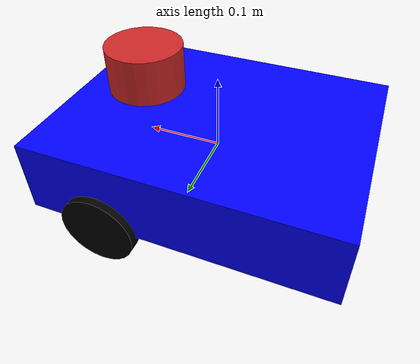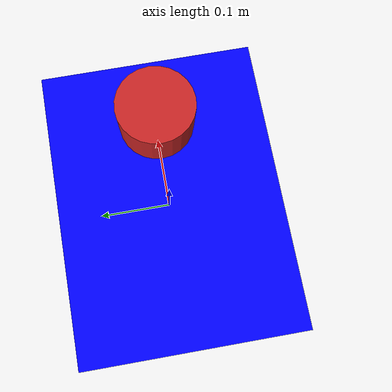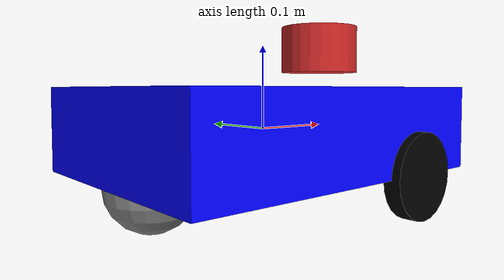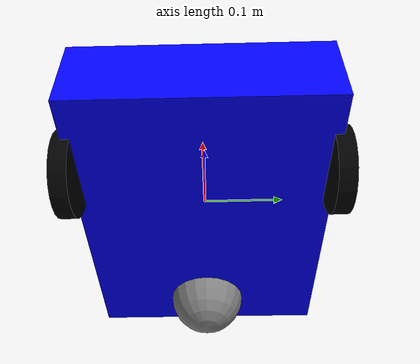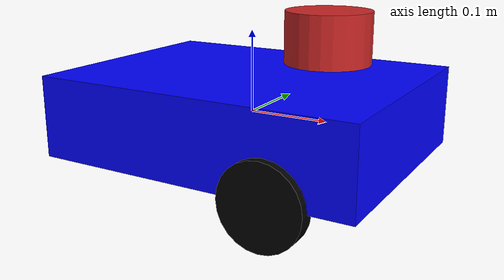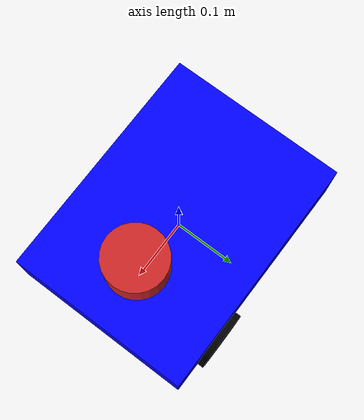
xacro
<?xml version="1.0"?>
<robot xmlns:xacro="http://www.ros.org/wiki/xacro" name="diff_drive_robot">
    <!-- Material Definitions -->
    <material name="blue">
        <color rgba="0 0 1 1"/>
    </material>
    <material name="black">
        <color rgba="0 0 0 1"/>
    </material>
    <material name="gray">
        <color rgba="0.5 0.5 0.5 1"/>
    </material>

    <!-- Add this near the top of your URDF, before base_link -->
    <link name="odom"/>

    <joint name="odom_joint" type="fixed">
        <parent link="odom"/>
        <child link="base_link"/>
        <origin xyz="0 0 0" rpy="0 0 0"/>
    </joint>

    <!-- Robot Physical Description -->
    <link name="base_link">
        <visual>
            <geometry>
                <box size="0.4 0.3 0.1"/>
            </geometry>
            <material name="blue"/>
        </visual>
        <collision>
            <geometry>
                <box size="0.4 0.3 0.1"/>
            </geometry>
        </collision>
        <inertial>
            <mass value="2.0"/>
            <origin xyz="0 0 0"/>
            <inertia ixx="0.01" ixy="0.0" ixz="0.0" iyy="0.01" iyz="0.0" izz="0.02"/>
        </inertial>
    </link>

    <!-- Left Wheel -->
    <link name="left_wheel">
        <visual>
            <geometry>
                <cylinder length="0.02" radius="0.05"/>
            </geometry>
            <material name="black"/>
        </visual>
        <collision>
            <geometry>
                <cylinder length="0.02" radius="0.05"/>
            </geometry>
        </collision>
        <inertial>
            <mass value="0.5"/>
            <origin xyz="0 0 0"/>
            <inertia ixx="0.001" ixy="0.0" ixz="0.0" iyy="0.001" iyz="0.0" izz="0.001"/>
        </inertial>
    </link>

    <joint name="left_wheel_joint" type="continuous">
        <parent link="base_link"/>
        <child link="left_wheel"/>
        <origin xyz="0.10 0.15 -0.05" rpy="-1.5707 0 0"/>
        <axis xyz="0 0 1"/>
    </joint>

    <!-- Right Wheel -->
    <link name="right_wheel">
        <visual>
            <geometry>
                <cylinder length="0.02" radius="0.05"/>
            </geometry>
            <material name="black"/>
        </visual>
        <collision>
            <geometry>
                <cylinder length="0.02" radius="0.05"/>
            </geometry>
        </collision>
        <inertial>
            <mass value="0.5"/>
            <origin xyz="0 0 0"/>
            <inertia ixx="0.001" ixy="0.0" ixz="0.0" iyy="0.001" iyz="0.0" izz="0.001"/>
        </inertial>
    </link>

    <joint name="right_wheel_joint" type="continuous">
        <parent link="base_link"/>
        <child link="right_wheel"/>
        <origin xyz="0.10 -0.15 -0.05" rpy="-1.5707 0 0"/>
        <axis xyz="0 0 1"/>
    </joint>

    <!-- ADD THE LIDAR SHIFTED TO +0.10m -->
    <link name="lazer_frame">
      <visual>
          <geometry>
              <cylinder radius="0.05" length="0.06"/>
          </geometry>
          <material name="red"/>
      </visual>
      <collision>
          <geometry>
              <cylinder radius="0.15" length="0.30"/>
          </geometry>
      </collision>
      <inertial>
          <mass value="1"/>
          <origin xyz="0 0 0"/>
          <inertia ixx="0.002858" ixy="0" ixz="0"
                  iyy="0.002858" iyz="0"
                  izz="0.005625"/>
      </inertial>
  </link>
  <joint name = "lazer_joint" type="fixed">
      <parent link="base_link"/>
      <child link="lazer_frame"/>
      <origin xyz = "0.10 0 0.10" rpy = "0 0 0"/>
  </joint>

  <!-- Gazebo Plugin -->
  <gazebo reference="lazer_frame">
    <sensor name="lazer" type="ray">
        <pose>0 0 0 0 0 0</pose>
        <visualize>true</visualize>
        <update_rate>10</update_rate>
        <ray>
            <scan>
                <horizontal>
                    <samples>360</samples>
                    <resolution>1</resolution>
                    <min_angle>-3.14</min_angle>
                    <max_angle>3.14</max_angle>
                </horizontal>
            </scan>
            <range>
                <min>0.3</min>
                <max>12</max>
                <resolution>1</resolution>
            </range>
        </ray>
        <plugin name="laser_controller" filename = "libgazebo_ros_ray_sensor.so">
            <ros>
                <remapping>~/out:=/scan</remapping>
            </ros>
            <output_type>sensor_msgs/LaserScan</output_type>
            <frame_name>lazer_frame</frame_name>
        </plugin>
    </sensor>
</gazebo>

    <!-- IMU sensor -->

    <!-- Caster Wheel -->
    <link name="caster_wheel">
        <visual>
            <geometry>
                <sphere radius="0.05"/>
            </geometry>
            <material name="gray"/>
        </visual>
        <collision>
            <geometry>
                <sphere radius="0.05"/>
            </geometry>
        </collision>
        <inertial>
            <mass value="0.1"/>
            <origin xyz="0 0 0"/>
            <inertia ixx="0.0001" ixy="0.0" ixz="0.0" iyy="0.0001" iyz="0.0" izz="0.0001"/>
        </inertial>
    </link>

    <joint name="caster_wheel_joint" type="fixed">
        <parent link="base_link"/>
        <child link="caster_wheel"/>
        <origin xyz="-0.15 0.0 -0.05" rpy="0 0 0"/>
    </joint>

    <!-- Gazebo Plugin Configurations -->
    <gazebo>
        <plugin name="gazebo_ros2_control" filename="libgazebo_ros2_control.so">
            <parameters>$(find slam)/config/controller.yaml</parameters>
        </plugin>
    </gazebo>

    <!-- Add Gazebo properties for the wheels -->
    <gazebo reference="left_wheel">
        <material>Gazebo/Black</material>
        <mu1>1.0</mu1>
        <mu2>1.0</mu2>
    </gazebo>

    <gazebo reference="right_wheel">
        <material>Gazebo/Black</material>
        <mu1>1.0</mu1>
        <mu2>1.0</mu2>
    </gazebo>

    <gazebo reference="caster_wheel">
        <material>Gazebo/Gray</material>
        <mu1>0.1</mu1>
        <mu2>0.1</mu2>
    </gazebo>

    <!-- ROS2 Control Tags -->
    <ros2_control name="diff_drive_robot_controller" type="system">
        <hardware>
            <plugin>gazebo_ros2_control/GazeboSystem</plugin>
        </hardware>
        <joint name="left_wheel_joint">
            <command_interface name="velocity"/>
            <state_interface name="velocity"/>
            <state_interface name="position"/>
        </joint>
        <joint name="right_wheel_joint">
            <command_interface name="velocity"/>
            <state_interface name="velocity"/>
            <state_interface name="position"/>
        </joint>
    </ros2_control>
</robot>
